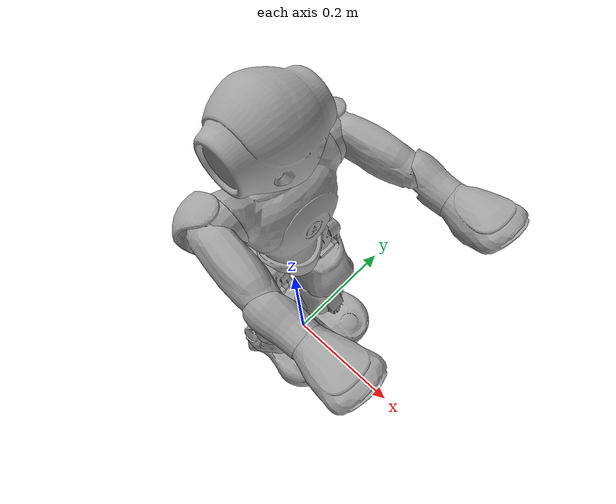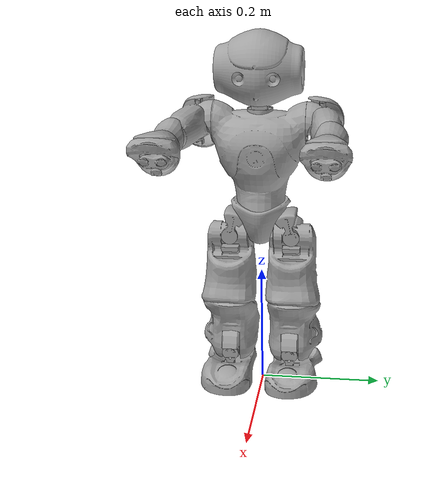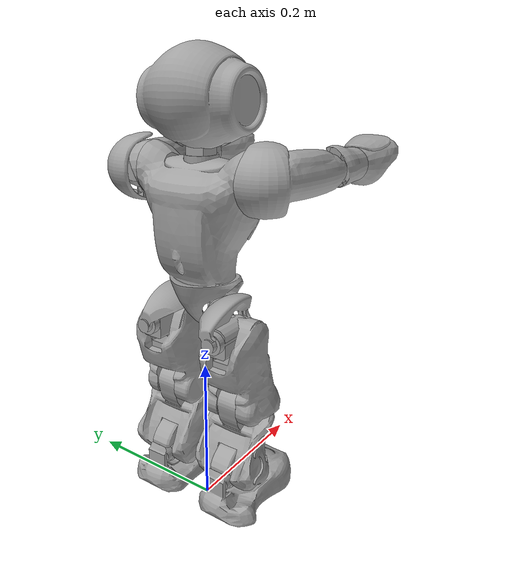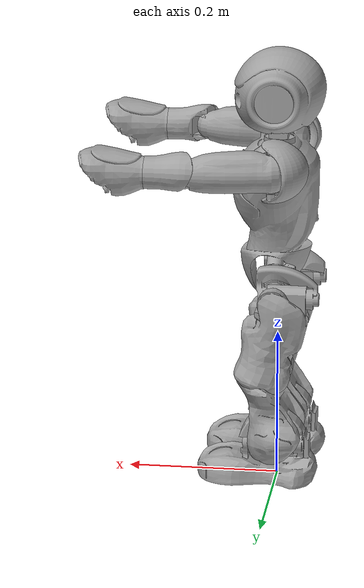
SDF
<sdf version="1.4">

  <!-- Do not modify this. -->
  <model name="">

    <!-- Do not modify this -->
    <pose></pose>

    <!-- A robot-->
    <include>
      <uri>model://nao_meshes</uri>
    </include>

    <!-- Joint used to lock the model to the world when needed -->
    <joint name="world_joint" type="revolute">
      <parent>world</parent>
      <child>Nao::base_link</child>
      <axis>
        <xyz>0 0 1</xyz>
        <limit>
          <upper>0</upper>
          <lower>0</lower>
        </limit>
      </axis>
    </joint>

    <plugin name="agent_plugin" filename="librobocup_agent_plugin.so">

      <!-- Do not modify this -->
      <robot_namespace></robot_namespace>
      <team_name></team_name>
      <uniform_number></uniform_number>

      <view_angle>120</view_angle>
      <head_link>Nao::HeadPitchLink</head_link>
      <imu_sensor>Nao::base_link::imu_sensor</imu_sensor>
      <force_sensor>Nao::RAnkleRollLink::right_foot_contact</force_sensor>
      <force_sensor>Nao::LAnkleRollLink::left_foot_contact</force_sensor>
    </plugin>

  </model>
</sdf>

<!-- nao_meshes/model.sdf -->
<sdf version='1.5'>
  <model name='Nao'>

    <pose>0 0 0.35 0 0 0</pose>
    <link name='base_link'>
      <pose>0 0 0 0 -0 0</pose>
      <inertial>
        <pose>-0.00413 0 0.04342 0 -0 0</pose>
        <mass>1.04956</mass>
        <inertia>
          <ixx>0.00506234</ixx>
          <ixy>1.43116e-05</ixy>
          <ixz>0.000155191</ixz>
          <iyy>0.00488014</iyy>
          <iyz>-2.70793e-05</iyz>
          <izz>0.0016103</izz>
        </inertia>
      </inertial>
      <sensor name='imu_sensor' type='imu'>
        <always_on>true</always_on>
        <update_rate>1000</update_rate>
        <imu>
          <noise>
            <type>gaussian</type>
            <rate>
              <mean>0</mean>
              <stddev>0.0002</stddev>
              <bias_mean>7.5e-06</bias_mean>
              <bias_stddev>8e-07</bias_stddev>
            </rate>
            <accel>
              <mean>0</mean>
              <stddev>0.017</stddev>
              <bias_mean>0.1</bias_mean>
              <bias_stddev>0.001</bias_stddev>
            </accel>
          </noise>
        </imu>
      </sensor>

      <collision name='base_link_collision_torso'>
        <pose>0 0 0 0 -0 0</pose>
        <geometry>
          <mesh>
            <scale>0.001 0.001 0.001</scale>
            <uri>model://nao_meshes/meshes/V40/collision/Torso.dae</uri>
          </mesh>
        </geometry>
      </collision>
      <visual name='base_link_visual_torso'>
        <pose>0 0 0 -1.57 -0 0</pose>
        <geometry>
          <mesh>
            <scale>0.001 0.001 0.001</scale>
            <uri>model://nao_meshes/meshes/V40/visual/Torso.dae</uri>
          </mesh>
        </geometry>
      </visual>
      <velocity_decay>
        <linear>0</linear>
        <angular>0</angular>
      </velocity_decay>
    </link>
    <link name='HeadYawLink'>
      <pose>0 0 0.1265 0 -0 0</pose>
      <inertial>
        <pose>-1e-05 0 -0.02742 0 -0 0</pose>
        <mass>0.06442</mass>
        <inertia>
          <ixx>7.4993e-05</ixx>
          <ixy>1.57e-09</ixy>
          <ixz>-1.834e-08</ixz>
          <iyy>7.6e-05</iyy>
          <iyz>-5.295e-08</iyz>
          <izz>5.53373e-06</izz>
        </inertia>
      </inertial>
      <collision name='HeadYawLink_collision'>
        <pose>0 0 0 0 -0 0</pose>
        <geometry>
          <mesh>
            <scale>0.001 0.001 0.001</scale>
            <uri>model://nao_meshes/meshes/V40/collision/HeadYaw.dae</uri>
          </mesh>
        </geometry>
      </collision>
      <visual name='HeadYawLink_visual'>
        <pose>0 0 0 -1.57 -0 0</pose>
        <geometry>
          <mesh>
            <scale>0.001 0.001 0.001</scale>
            <uri>model://nao_meshes/meshes/V40/visual/HeadYaw.dae</uri>
          </mesh>
        </geometry>
      </visual>
      <velocity_decay>
        <linear>0</linear>
        <angular>0</angular>
      </velocity_decay>
    </link>
    <joint name='HeadYaw' type='revolute'>
      <child>HeadYawLink</child>
      <parent>base_link</parent>
      <axis>
        <xyz>0 0 1</xyz>
        <limit>
          <lower>-1e+16</lower>
          <upper>1e+16</upper>
        </limit>
        <dynamics>
          <damping>0.01</damping>
        </dynamics>
        <use_parent_model_frame>1</use_parent_model_frame>
      </axis>
      <physics><ode><implicit_spring_damper>true</implicit_spring_damper></ode></physics>
    </joint>
    <link name='HeadPitchLink'>
      <pose>0 0 0.1265 0 -0 0</pose>
      <inertial>
        <pose>-0.00112 0 0.05258 0 -0 0</pose>
        <mass>0.60533</mass>
        <inertia>
          <ixx>0.0026313</ixx>
          <ixy>8.78814e-06</ixy>
          <ixz>4.09847e-05</ixz>
          <iyy>0.00249112</iyy>
          <iyz>-2.99579e-05</iyz>
          <izz>0.000985736</izz>
        </inertia>
      </inertial>
      <collision name='HeadPitchLink_collision'>
        <pose>0 0 0 0 -0 0</pose>
        <geometry>
          <mesh>
            <scale>0.001 0.001 0.001</scale>
            <uri>model://nao_meshes/meshes/V40/collision/HeadPitch.dae</uri>
          </mesh>
        </geometry>
      </collision>
      <visual name='HeadPitchLink_visual'>
        <pose>0 0 0 -1.57 -0 0</pose>
        <geometry>
          <mesh>
            <scale>0.001 0.001 0.001</scale>
            <uri>model://nao_meshes/meshes/V40/visual/HeadPitch.dae</uri>
          </mesh>
        </geometry>
      </visual>
      <velocity_decay>
        <linear>0</linear>
        <angular>0</angular>
      </velocity_decay>
    </link>
    <joint name='HeadPitch' type='revolute'>
      <child>HeadPitchLink</child>
      <parent>HeadYawLink</parent>
      <axis>
        <xyz>0 1 0</xyz>
        <limit>
          <lower>-1e+16</lower>
          <upper>1e+16</upper>
        </limit>
        <dynamics>
          <damping>0.01</damping>
        </dynamics>
        <use_parent_model_frame>1</use_parent_model_frame>
      </axis>
      <physics><ode><implicit_spring_damper>true</implicit_spring_damper></ode></physics>
    </joint>
    <link name='LHipYawPitchLink'>
      <pose>0 0.05 -0.085 0 -0 0</pose>
      <inertial>
        <pose>-0.00781 -0.01114 0.02661 0 -0 0</pose>
        <mass>0.06981</mass>
        <inertia>
          <ixx>8.15023e-05</ixx>
          <ixy>-4.99449e-06</ixy>
          <ixz>1.27482e-05</ixz>
          <iyy>0.000101326</iyy>
          <iyz>2.34547e-05</iyz>
          <izz>6.26236e-05</izz>
        </inertia>
      </inertial>
      <collision name='LHipYawPitchLink_collision'>
        <pose>0 0 0 0 -0 0</pose>
        <geometry>
          <mesh>
            <scale>0.001 0.001 0.001</scale>
            <uri>model://nao_meshes/meshes/V40/collision/LHipYawPitch.dae</uri>
          </mesh>
        </geometry>
      </collision>
      <visual name='LHipYawPitchLink_visual'>
        <pose>0 0 0 -1.57 -0 0</pose>
        <geometry>
          <mesh>
            <scale>0.001 0.001 0.001</scale>
            <uri>model://nao_meshes/meshes/V40/visual/LHipYawPitch.dae</uri>
          </mesh>
        </geometry>
      </visual>
      <velocity_decay>
        <linear>0</linear>
        <angular>0</angular>
      </velocity_decay>
    </link>
    <joint name='LHipYawPitch' type='revolute'>
      <child>LHipYawPitchLink</child>
      <parent>base_link</parent>
      <axis>
        <xyz>0 0.707107 -0.707107</xyz>
        <limit>
          <lower>-1e+16</lower>
          <upper>1e+16</upper>
        </limit>
        <dynamics>
          <damping>0.01</damping>
        </dynamics>
        <use_parent_model_frame>1</use_parent_model_frame>
      </axis>
      <physics><ode><implicit_spring_damper>true</implicit_spring_damper></ode></physics>
    </joint>
    <link name='LHipRollLink'>
      <pose>0 0.05 -0.085 0 -0 0</pose>
      <inertial>
        <pose>-0.01549 0.00029 -0.00515 0 -0 0</pose>
        <mass>0.13053</mass>
        <inertia>
          <ixx>2.75835e-05</ixx>
          <ixy>-2.233e-08</ixy>
          <ixz>-4.08164e-06</ixz>
          <iyy>9.82706e-05</iyy>
          <iyz>-4.19e-09</iyz>
          <izz>8.80997e-05</izz>
        </inertia>
      </inertial>
      <collision name='LHipRollLink_collision'>
        <pose>0 0 0 0 -0 0</pose>
        <geometry>
          <mesh>
            <scale>0.001 0.001 0.001</scale>
            <uri>model://nao_meshes/meshes/V40/collision/LHipRoll.dae</uri>
          </mesh>
        </geometry>
      </collision>
      <visual name='LHipRollLink_visual'>
        <pose>0 0 0 -1.57 -0 0</pose>
        <geometry>
          <mesh>
            <scale>0.001 0.001 0.001</scale>
            <uri>model://nao_meshes/meshes/V40/visual/LHipRoll.dae</uri>
          </mesh>
        </geometry>
      </visual>
      <velocity_decay>
        <linear>0</linear>
        <angular>0</angular>
      </velocity_decay>
    </link>
    <joint name='LHipRoll' type='revolute'>
      <child>LHipRollLink</child>
      <parent>LHipYawPitchLink</parent>
      <axis>
        <xyz>1 0 0</xyz>
        <limit>
          <lower>-1e+16</lower>
          <upper>1e+16</upper>
        </limit>
        <dynamics>
          <damping>0.01</damping>
        </dynamics>
        <use_parent_model_frame>1</use_parent_model_frame>
      </axis>
      <physics><ode><implicit_spring_damper>true</implicit_spring_damper></ode></physics>
    </joint>
    <link name='LHipPitchLink'>
      <pose>0 0.05 -0.085 0 -0 0</pose>
      <inertial>
        <pose>0.00138 0.00221 -0.05373 0 -0 0</pose>
        <mass>0.38968</mass>
        <inertia>
          <ixx>0.00163672</ixx>
          <ixy>9.2451e-07</ixy>
          <ixz>8.53067e-05</ixz>
          <iyy>0.00159107</iyy>
          <iyz>3.83616e-05</iyz>
          <izz>0.000303743</izz>
        </inertia>
      </inertial>
      <collision name='LHipPitchLink_collision'>
        <pose>0 0 0 0 -0 0</pose>
        <geometry>
          <mesh>
            <scale>0.001 0.001 0.001</scale>
            <uri>model://nao_meshes/meshes/V40/collision/LHipPitch.dae</uri>
          </mesh>
        </geometry>
      </collision>
      <visual name='LHipPitchLink_visual'>
        <pose>0 0 0 -1.57 -0 0</pose>
        <geometry>
          <mesh>
            <scale>0.001 0.001 0.001</scale>
            <uri>model://nao_meshes/meshes/V40/visual/LHipPitch.dae</uri>
          </mesh>
        </geometry>
      </visual>
      <velocity_decay>
        <linear>0</linear>
        <angular>0</angular>
      </velocity_decay>
    </link>
    <joint name='LHipPitch' type='revolute'>
      <child>LHipPitchLink</child>
      <parent>LHipRollLink</parent>
      <axis>
        <xyz>0 1 0</xyz>
        <limit>
          <lower>-1e+16</lower>
          <upper>1e+16</upper>
        </limit>
        <dynamics>
          <damping>0.01</damping>
        </dynamics>
        <use_parent_model_frame>1</use_parent_model_frame>
      </axis>
      <physics><ode><implicit_spring_damper>true</implicit_spring_damper></ode></physics>
    </joint>
    <link name='LKneePitchLink'>
      <pose>0 0.05 -0.185 0 -0 0</pose>
      <inertial>
        <pose>0.00453 0.00225 -0.04936 0 -0 0</pose>
        <mass>0.29142</mass>
        <inertia>
          <ixx>0.00118208</ixx>
          <ixy>6.3362e-07</ixy>
          <ixz>3.6497e-05</ixz>
          <iyy>0.00112865</iyy>
          <iyz>3.94952e-05</iyz>
          <izz>0.000193227</izz>
        </inertia>
      </inertial>
      <collision name='LKneePitchLink_collision'>
        <pose>0 0 0 0 -0 0</pose>
        <geometry>
          <mesh>
            <scale>0.001 0.001 0.001</scale>
            <uri>model://nao_meshes/meshes/V40/collision/LKneePitch.dae</uri>
          </mesh>
        </geometry>
      </collision>
      <visual name='LKneePitchLink_visual'>
        <pose>0 0 0 -1.57 -0 0</pose>
        <geometry>
          <mesh>
            <scale>0.001 0.001 0.001</scale>
            <uri>model://nao_meshes/meshes/V40/visual/LKneePitch.dae</uri>
          </mesh>
        </geometry>
      </visual>
      <velocity_decay>
        <linear>0</linear>
        <angular>0</angular>
      </velocity_decay>
    </link>
    <joint name='LKneePitch' type='revolute'>
      <child>LKneePitchLink</child>
      <parent>LHipPitchLink</parent>
      <axis>
        <xyz>0 1 0</xyz>
        <limit>
          <lower>-1e+16</lower>
          <upper>1e+16</upper>
        </limit>
        <dynamics>
          <damping>0.01</damping>
        </dynamics>
        <use_parent_model_frame>1</use_parent_model_frame>
      </axis>
      <physics><ode><implicit_spring_damper>true</implicit_spring_damper></ode></physics>
    </joint>
    <link name='LAnklePitchLink'>
      <pose>0 0.05 -0.2879 0 -0 0</pose>
      <inertial>
        <pose>0.00045 0.00029 0.00685 0 -0 0</pose>
        <mass>0.13416</mass>
        <inertia>
          <ixx>3.85098e-05</ixx>
          <ixy>-2.634e-08</ixy>
          <ixz>3.86194e-06</ixz>
          <iyy>7.42653e-05</iyy>
          <iyz>1.834e-08</iyz>
          <izz>5.48654e-05</izz>
        </inertia>
      </inertial>
      <collision name='LAnklePitchLink_collision'>
        <pose>0 0 0 0 -0 0</pose>
        <geometry>
          <mesh>
            <scale>0.001 0.001 0.001</scale>
            <uri>model://nao_meshes/meshes/V40/collision/LAnklePitch.dae</uri>
          </mesh>
        </geometry>
      </collision>
      <visual name='LAnklePitchLink_visual'>
        <pose>0 0 0 -1.57 -0 0</pose>
        <geometry>
          <mesh>
            <scale>0.001 0.001 0.001</scale>
            <uri>model://nao_meshes/meshes/V40/visual/LAnklePitch.dae</uri>
          </mesh>
        </geometry>
      </visual>
      <velocity_decay>
        <linear>0</linear>
        <angular>0</angular>
      </velocity_decay>
    </link>
    <joint name='LAnklePitch' type='revolute'>
      <child>LAnklePitchLink</child>
      <parent>LKneePitchLink</parent>
      <axis>
        <xyz>0 1 0</xyz>
        <limit>
          <lower>-1e+16</lower>
          <upper>1e+16</upper>
        </limit>
        <dynamics>
          <damping>1.0</damping>
        </dynamics>
        <use_parent_model_frame>1</use_parent_model_frame>
      </axis>
      <physics><ode><implicit_spring_damper>true</implicit_spring_damper></ode></physics>
    </joint>
    <link name='LAnkleRollLink'>
      <pose>0 0.05 -0.2879 0 -0 0</pose>
      <inertial>
        <pose>0.02542 0.0033 -0.03239 0 -0 0</pose>
        <mass>0.16184</mass>
        <inertia>
          <ixx>0.000269442</ixx>
          <ixy>-5.69572e-06</ixy>
          <ixz>0.000139379</ixz>
          <iyy>0.000644343</iyy>
          <iyz>1.87409e-05</iyz>
          <izz>0.000525757</izz>
        </inertia>
      </inertial>
      <collision name='LAnkleRollLink_collision'>
        <pose>0 0 0 0 -0 0</pose>
        <geometry>
          <mesh>
            <scale>0.001 0.001 0.001</scale>
            <uri>model://nao_meshes/meshes/V40/collision/LAnkleRoll.dae</uri>
          </mesh>
        </geometry>
      </collision>
      <visual name='LAnkleRollLink_visual'>
        <pose>0 0 0 -1.57 -0 0</pose>
        <geometry>
          <mesh>
            <scale>0.001 0.001 0.001</scale>
            <uri>model://nao_meshes/meshes/V40/visual/LAnkleRoll.dae</uri>
          </mesh>
        </geometry>
      </visual>
      <velocity_decay>
        <linear>0</linear>
        <angular>0</angular>
      </velocity_decay>
      <sensor name='left_foot_contact' type='contact'>
        <always_on>true</always_on>
        <update_rate>1000</update_rate>
        <contact>
          <collision>LAnkleRollLink_collision</collision>
        </contact>
      </sensor>
    </link>
    <joint name='LAnkleRoll' type='revolute'>
      <child>LAnkleRollLink</child>
      <parent>LAnklePitchLink</parent>
      <axis>
        <xyz>1 0 0</xyz>
        <limit>
          <lower>-1e+16</lower>
          <upper>1e+16</upper>
        </limit>
        <dynamics>
          <damping>1.0</damping>
        </dynamics>
        <use_parent_model_frame>1</use_parent_model_frame>
      </axis>
      <physics><ode><implicit_spring_damper>true</implicit_spring_damper></ode></physics>
    </joint>
    <link name='LShoulderPitchLink'>
      <pose>0 0.098 0.1 0 -0 0</pose>
      <inertial>
        <pose>-0.00165 -0.02663 0.00014 0 -0 0</pose>
        <mass>0.07504</mass>
        <inertia>
          <ixx>8.42843e-05</ixx>
          <ixy>-2.02802e-06</ixy>
          <ixz>2.338e-08</ixz>
          <iyy>1.41556e-05</iyy>
          <iyz>-1.972e-08</iyz>
          <izz>8.64195e-05</izz>
        </inertia>
      </inertial>
      <collision name='LShoulderPitchLink_collision'>
        <pose>0 0 0 0 -0 0</pose>
        <geometry>
          <mesh>
            <scale>0.001 0.001 0.001</scale>
            <uri>model://nao_meshes/meshes/V40/collision/LShoulderPitch.dae</uri>
          </mesh>
        </geometry>
      </collision>
      <visual name='LShoulderPitchLink_visual'>
        <pose>0 0 0 -1.57 -0 0</pose>
        <geometry>
          <mesh>
            <scale>0.001 0.001 0.001</scale>
            <uri>model://nao_meshes/meshes/V40/visual/LShoulderPitch.dae</uri>
          </mesh>
        </geometry>
      </visual>
      <velocity_decay>
        <linear>0</linear>
        <angular>0</angular>
      </velocity_decay>
    </link>
    <joint name='LShoulderPitch' type='revolute'>
      <child>LShoulderPitchLink</child>
      <parent>base_link</parent>
      <axis>
        <xyz>0 1 0</xyz>
        <limit>
          <lower>-1e+16</lower>
          <upper>1e+16</upper>
        </limit>
        <dynamics>
          <damping>0.01</damping>
        </dynamics>
        <use_parent_model_frame>1</use_parent_model_frame>
      </axis>
      <physics><ode><implicit_spring_damper>true</implicit_spring_damper></ode></physics>
    </joint>
    <link name='LShoulderRollLink'>
      <pose>0 0.098 0.1 0 -0 0</pose>
      <inertial>
        <pose>0.02455 0.00563 0.0033 0 -0 0</pose>
        <mass>0.15777</mass>
        <inertia>
          <ixx>9.38999e-05</ixx>
          <ixy>-4.71445e-05</ixy>
          <ixz>-2.69947e-05</ixz>
          <iyy>0.000371519</iyy>
          <iyz>-2.45977e-06</iyz>
          <izz>0.000341901</izz>
        </inertia>
      </inertial>
      <collision name='LShoulderRollLink_collision'>
        <pose>0 0 0 0 -0 0</pose>
        <geometry>
          <mesh>
            <scale>0.001 0.001 0.001</scale>
            <uri>model://nao_meshes/meshes/V40/collision/LShoulderRoll.dae</uri>
          </mesh>
        </geometry>
      </collision>
      <visual name='LShoulderRollLink_visual'>
        <pose>0 0 0 -1.57 -0 0</pose>
        <geometry>
          <mesh>
            <scale>0.001 0.001 0.001</scale>
            <uri>model://nao_meshes/meshes/V40/visual/LShoulderRoll.dae</uri>
          </mesh>
        </geometry>
      </visual>
      <velocity_decay>
        <linear>0</linear>
        <angular>0</angular>
      </velocity_decay>
    </link>
    <joint name='LShoulderRoll' type='revolute'>
      <child>LShoulderRollLink</child>
      <parent>LShoulderPitchLink</parent>
      <axis>
        <xyz>0 0 1</xyz>
        <limit>
          <lower>-1e+16</lower>
          <upper>1e+16</upper>
        </limit>
        <dynamics>
          <damping>0.01</damping>
        </dynamics>
        <use_parent_model_frame>1</use_parent_model_frame>
      </axis>
      <physics><ode><implicit_spring_damper>true</implicit_spring_damper></ode></physics>
    </joint>
    <link name='LElbowYawLink'>
      <pose>0.105 0.113 0.1 0 -0 0</pose>
      <inertial>
        <pose>-0.02744 0 -0.00014 0 -0 0</pose>
        <mass>0.06483</mass>
        <inertia>
          <ixx>5.59715e-06</ixx>
          <ixy>4.21e-09</ixy>
          <ixz>4.319e-08</ixz>
          <iyy>7.54331e-05</iyy>
          <iyz>-1.84e-09</iyz>
          <izz>7.64434e-05</izz>
        </inertia>
      </inertial>
      <velocity_decay>
        <linear>0</linear>
        <angular>0</angular>
      </velocity_decay>
    </link>
    <joint name='LElbowYaw' type='revolute'>
      <child>LElbowYawLink</child>
      <parent>LShoulderRollLink</parent>
      <axis>
        <xyz>1 0 0</xyz>
        <limit>
          <lower>-1e+16</lower>
          <upper>1e+16</upper>
        </limit>
        <dynamics>
          <damping>0.01</damping>
        </dynamics>
        <use_parent_model_frame>1</use_parent_model_frame>
      </axis>
      <physics><ode><implicit_spring_damper>true</implicit_spring_damper></ode></physics>
    </joint>
    <link name='LElbowRollLink'>
      <pose>0.105 0.113 0.1 0 -0 0</pose>
      <inertial>
        <pose>0.02556 0.00281 0.00076 0 -0 0</pose>
        <mass>0.07761</mass>
        <inertia>
          <ixx>2.53322e-05</ixx>
          <ixy>-2.34271e-06</ixy>
          <ixz>7.459e-08</ixz>
          <iyy>8.91322e-05</iyy>
          <iyz>-2.655e-08</iyz>
          <izz>8.72873e-05</izz>
        </inertia>
      </inertial>
      <collision name='LElbowRollLink_collision'>
        <pose>0 0 0 0 -0 0</pose>
        <geometry>
          <mesh>
            <scale>0.001 0.001 0.001</scale>
            <uri>model://nao_meshes/meshes/V40/collision/LElbowRoll.dae</uri>
          </mesh>
        </geometry>
      </collision>
      <visual name='LElbowRollLink_visual'>
        <pose>0 0 0 -1.57 -0 0</pose>
        <geometry>
          <mesh>
            <scale>0.001 0.001 0.001</scale>
            <uri>model://nao_meshes/meshes/V40/visual/LElbowRoll.dae</uri>
          </mesh>
        </geometry>
      </visual>
      <velocity_decay>
        <linear>0</linear>
        <angular>0</angular>
      </velocity_decay>
    </link>
    <joint name='LElbowRoll' type='revolute'>
      <child>LElbowRollLink</child>
      <parent>LElbowYawLink</parent>
      <axis>
        <xyz>0 0 1</xyz>
        <limit>
          <lower>-1e+16</lower>
          <upper>1e+16</upper>
        </limit>
        <dynamics>
          <damping>0.01</damping>
        </dynamics>
        <use_parent_model_frame>1</use_parent_model_frame>
      </axis>
      <physics><ode><implicit_spring_damper>true</implicit_spring_damper></ode></physics>
    </joint>
    <link name='LWristYawLink'>
      <pose>0.16095 0.113 0.1 0 -0 0</pose>
      <inertial>
        <pose>0.03434 -0.00088 0.00308 0 -0 0</pose>
        <mass>0.18533</mass>
        <inertia>
          <ixx>7.05493e-05</ixx>
          <ixy>5.71599e-06</ixy>
          <ixz>-2.24744e-05</ixz>
          <iyy>0.000356062</iyy>
          <iyz>3.17771e-06</iyz>
          <izz>0.000351919</izz>
        </inertia>
      </inertial>
      <collision name='LWristYawLink_collision'>
        <pose>0 0 0 0 -0 0</pose>
        <geometry>
          <mesh>
            <scale>0.001 0.001 0.001</scale>
            <uri>model://nao_meshes/meshes/V40/collision/WristYaw.dae</uri>
          </mesh>
        </geometry>
      </collision>
      <visual name='LWristYawLink_visual'>
        <pose>0 0 0 -1.57 -0 0</pose>
        <geometry>
          <mesh>
            <scale>0.001 0.001 0.001</scale>
            <uri>model://nao_meshes/meshes/V40/visual/WristYaw.dae</uri>
          </mesh>
        </geometry>
      </visual>
      <velocity_decay>
        <linear>0</linear>
        <angular>0</angular>
      </velocity_decay>
    </link>
    <joint name='LWristYaw' type='revolute'>
      <child>LWristYawLink</child>
      <parent>LElbowRollLink</parent>
      <axis>
        <xyz>1 0 0</xyz>
        <limit>
          <lower>-1e+16</lower>
          <upper>1e+16</upper>
        </limit>
        <dynamics>
          <damping>0.01</damping>
        </dynamics>
        <use_parent_model_frame>1</use_parent_model_frame>
      </axis>
      <physics><ode><implicit_spring_damper>true</implicit_spring_damper></ode></physics>
    </joint>
    <link name='RHipYawPitchLink'>
      <pose>0 -0.05 -0.085 0 -0 0</pose>
      <inertial>
        <pose>-0.00781 0.01114 0.02661 0 -0 0</pose>
        <mass>0.06981</mass>
        <inertia>
          <ixx>8.9972e-05</ixx>
          <ixy>5.00219e-06</ixy>
          <ixz>1.27352e-05</ixz>
          <iyy>0.000105526</iyy>
          <iyz>-2.77008e-05</iyz>
          <izz>6.68872e-05</izz>
        </inertia>
      </inertial>
      <collision name='RHipYawPitchLink_collision'>
        <pose>0 0 0 0 -0 0</pose>
        <geometry>
          <mesh>
            <scale>0.001 0.001 0.001</scale>
            <uri>model://nao_meshes/meshes/V40/collision/RHipYawPitch.dae</uri>
          </mesh>
        </geometry>
      </collision>
      <visual name='RHipYawPitchLink_visual'>
        <pose>0 0 0 -1.57 -0 0</pose>
        <geometry>
          <mesh>
            <scale>0.001 0.001 0.001</scale>
            <uri>model://nao_meshes/meshes/V40/visual/RHipYawPitch.dae</uri>
          </mesh>
        </geometry>
      </visual>
      <velocity_decay>
        <linear>0</linear>
        <angular>0</angular>
      </velocity_decay>
    </link>
    <joint name='RHipYawPitch' type='revolute'>
      <child>RHipYawPitchLink</child>
      <parent>base_link</parent>
      <axis>
        <xyz>0 0.707107 0.707107</xyz>
        <limit>
          <lower>-1e+16</lower>
          <upper>1e+16</upper>
        </limit>
        <dynamics>
          <damping>0.01</damping>
        </dynamics>
        <use_parent_model_frame>1</use_parent_model_frame>
      </axis>
      <physics><ode><implicit_spring_damper>true</implicit_spring_damper></ode></physics>
    </joint>
    <link name='RHipRollLink'>
      <pose>0 -0.05 -0.085 0 -0 0</pose>
      <inertial>
        <pose>-0.01549 -0.00029 -0.00515 0 -0 0</pose>
        <mass>0.13053</mass>
        <inertia>
          <ixx>2.75865e-05</ixx>
          <ixy>-1.919e-08</ixy>
          <ixz>-4.10822e-06</ixz>
          <iyy>9.827e-05</iyy>
          <iyz>2.51e-09</iyz>
          <izz>8.81033e-05</izz>
        </inertia>
      </inertial>
      <collision name='RHipRollLink_collision'>
        <pose>0 0 0 0 -0 0</pose>
        <geometry>
          <mesh>
            <scale>0.001 0.001 0.001</scale>
            <uri>model://nao_meshes/meshes/V40/collision/RHipRoll.dae</uri>
          </mesh>
        </geometry>
      </collision>
      <visual name='RHipRollLink_visual'>
        <pose>0 0 0 -1.57 -0 0</pose>
        <geometry>
          <mesh>
            <scale>0.001 0.001 0.001</scale>
            <uri>model://nao_meshes/meshes/V40/visual/RHipRoll.dae</uri>
          </mesh>
        </geometry>
      </visual>
      <velocity_decay>
        <linear>0</linear>
        <angular>0</angular>
      </velocity_decay>
    </link>
    <joint name='RHipRoll' type='revolute'>
      <child>RHipRollLink</child>
      <parent>RHipYawPitchLink</parent>
      <axis>
        <xyz>1 0 0</xyz>
        <limit>
          <lower>-1e+16</lower>
          <upper>1e+16</upper>
        </limit>
        <dynamics>
          <damping>0.01</damping>
        </dynamics>
        <use_parent_model_frame>1</use_parent_model_frame>
      </axis>
      <physics><ode><implicit_spring_damper>true</implicit_spring_damper></ode></physics>
    </joint>
    <link name='RHipPitchLink'>
      <pose>0 -0.05 -0.085 0 -0 0</pose>
      <inertial>
        <pose>0.00138 -0.00221 -0.05373 0 -0 0</pose>
        <mass>0.38968</mass>
        <inertia>
          <ixx>0.00163748</ixx>
          <ixy>-8.3954e-07</ixy>
          <ixz>8.5883e-05</ixz>
          <iyy>0.00159221</iyy>
          <iyz>-3.91763e-05</iyz>
          <izz>0.000303978</izz>
        </inertia>
      </inertial>
      <collision name='RHipPitchLink_collision'>
        <pose>0 0 0 0 -0 0</pose>
        <geometry>
          <mesh>
            <scale>0.001 0.001 0.001</scale>
            <uri>model://nao_meshes/meshes/V40/collision/RHipPitch.dae</uri>
          </mesh>
        </geometry>
      </collision>
      <visual name='RHipPitchLink_visual'>
        <pose>0 0 0 -1.57 -0 0</pose>
        <geometry>
          <mesh>
            <scale>0.001 0.001 0.001</scale>
            <uri>model://nao_meshes/meshes/V40/visual/RHipPitch.dae</uri>
          </mesh>
        </geometry>
      </visual>
      <velocity_decay>
        <linear>0</linear>
        <angular>0</angular>
      </velocity_decay>
    </link>
    <joint name='RHipPitch' type='revolute'>
      <child>RHipPitchLink</child>
      <parent>RHipRollLink</parent>
      <axis>
        <xyz>0 1 0</xyz>
        <limit>
          <lower>-1e+16</lower>
          <upper>1e+16</upper>
        </limit>
        <dynamics>
          <damping>0.01</damping>
        </dynamics>
        <use_parent_model_frame>1</use_parent_model_frame>
      </axis>
      <physics><ode><implicit_spring_damper>true</implicit_spring_damper></ode></physics>
    </joint>
    <link name='RKneePitchLink'>
      <pose>0 -0.05 -0.185 0 -0 0</pose>
      <inertial>
        <pose>0.00453 -0.00225 -0.04936 0 -0 0</pose>
        <mass>0.29142</mass>
        <inertia>
          <ixx>0.00118283</ixx>
          <ixy>-8.965e-07</ixy>
          <ixz>2.79969e-05</ixz>
          <iyy>0.00112828</iyy>
          <iyz>-3.8476e-05</iyz>
          <izz>0.000191453</izz>
        </inertia>
      </inertial>
      <collision name='RKneePitchLink_collision'>
        <pose>0 0 0 0 -0 0</pose>
        <geometry>
          <mesh>
            <scale>0.001 0.001 0.001</scale>
            <uri>model://nao_meshes/meshes/V40/collision/RKneePitch.dae</uri>
          </mesh>
        </geometry>
      </collision>
      <visual name='RKneePitchLink_visual'>
        <pose>0 0 0 -1.57 -0 0</pose>
        <geometry>
          <mesh>
            <scale>0.001 0.001 0.001</scale>
            <uri>model://nao_meshes/meshes/V40/visual/RKneePitch.dae</uri>
          </mesh>
        </geometry>
      </visual>
      <velocity_decay>
        <linear>0</linear>
        <angular>0</angular>
      </velocity_decay>
    </link>
    <joint name='RKneePitch' type='revolute'>
      <child>RKneePitchLink</child>
      <parent>RHipPitchLink</parent>
      <axis>
        <xyz>0 1 0</xyz>
        <limit>
          <lower>-1e+16</lower>
          <upper>1e+16</upper>
        </limit>
        <dynamics>
          <damping>0.01</damping>
        </dynamics>
        <use_parent_model_frame>1</use_parent_model_frame>
      </axis>
      <physics><ode><implicit_spring_damper>true</implicit_spring_damper></ode></physics>
    </joint>
    <link name='RAnklePitchLink'>
      <pose>0 -0.05 -0.2879 0 -0 0</pose>
      <inertial>
        <pose>0.00045 -0.00029 0.00685 0 -0 0</pose>
        <mass>0.13416</mass>
        <inertia>
          <ixx>3.85081e-05</ixx>
          <ixy>6.434e-08</ixy>
          <ixz>3.87466e-06</ixz>
          <iyy>7.43108e-05</iyy>
          <iyz>-4.58e-09</iyz>
          <izz>5.49131e-05</izz>
        </inertia>
      </inertial>
      <collision name='RAnklePitchLink_collision'>
        <pose>0 0 0 0 -0 0</pose>
        <geometry>
          <mesh>
            <scale>0.001 0.001 0.001</scale>
            <uri>model://nao_meshes/meshes/V40/collision/RAnklePitch.dae</uri>
          </mesh>
        </geometry>
      </collision>
      <visual name='RAnklePitchLink_visual'>
        <pose>0 0 0 -1.57 -0 0</pose>
        <geometry>
          <mesh>
            <scale>0.001 0.001 0.001</scale>
            <uri>model://nao_meshes/meshes/V40/visual/RAnklePitch.dae</uri>
          </mesh>
        </geometry>
      </visual>
      <velocity_decay>
        <linear>0</linear>
        <angular>0</angular>
      </velocity_decay>
    </link>
    <joint name='RAnklePitch' type='revolute'>
      <child>RAnklePitchLink</child>
      <parent>RKneePitchLink</parent>
      <axis>
        <xyz>0 1 0</xyz>
        <limit>
          <lower>-1e+16</lower>
          <upper>1e+16</upper>
        </limit>
        <dynamics>
          <damping>1.0</damping>
        </dynamics>
        <use_parent_model_frame>1</use_parent_model_frame>
      </axis>
      <physics><ode><implicit_spring_damper>true</implicit_spring_damper></ode></physics>
    </joint>
    <link name='RAnkleRollLink'>
      <pose>0 -0.05 -0.2879 0 -0 0</pose>
      <inertial>
        <pose>0.02542 -0.0033 -0.03239 0 -0 0</pose>
        <mass>0.16184</mass>
        <inertia>
          <ixx>0.000269302</ixx>
          <ixy>5.87505e-06</ixy>
          <ixz>0.000139133</ixz>
          <iyy>0.000643474</iyy>
          <iyz>-1.88492e-05</iyz>
          <izz>0.000525035</izz>
        </inertia>
      </inertial>
      <collision name='RAnkleRollLink_collision'>
        <pose>0 0 0 0 -0 0</pose>
        <geometry>
          <mesh>
            <scale>0.001 0.001 0.001</scale>
            <uri>model://nao_meshes/meshes/V40/collision/RAnkleRoll.dae</uri>
          </mesh>
        </geometry>
      </collision>
      <visual name='RAnkleRollLink_visual'>
        <pose>0 0 0 -1.57 -0 0</pose>
        <geometry>
          <mesh>
            <scale>0.001 0.001 0.001</scale>
            <uri>model://nao_meshes/meshes/V40/visual/RAnkleRoll.dae</uri>
          </mesh>
        </geometry>
      </visual>
      <velocity_decay>
        <linear>0</linear>
        <angular>0</angular>
      </velocity_decay>
      <sensor name='right_foot_contact' type='contact'>
        <always_on>true</always_on>
        <update_rate>1000</update_rate>
        <contact>
          <collision>RAnkleRollLink_collision</collision>
        </contact>
      </sensor>
    </link>
    <joint name='RAnkleRoll' type='revolute'>
      <child>RAnkleRollLink</child>
      <parent>RAnklePitchLink</parent>
      <axis>
        <xyz>1 0 0</xyz>
        <limit>
          <lower>-1e+16</lower>
          <upper>1e+16</upper>
        </limit>
        <dynamics>
          <damping>1.0</damping>
        </dynamics>
        <use_parent_model_frame>1</use_parent_model_frame>
      </axis>
      <physics><ode><implicit_spring_damper>true</implicit_spring_damper></ode></physics>
    </joint>
    <link name='RShoulderPitchLink'>
      <pose>0 -0.098 0.1 0 -0 0</pose>
      <inertial>
        <pose>-0.00165 0.02663 0.00014 0 -0 0</pose>
        <mass>0.07504</mass>
        <inertia>
          <ixx>8.42843e-05</ixx>
          <ixy>2.02802e-06</ixy>
          <ixz>2.338e-08</ixz>
          <iyy>1.41556e-05</iyy>
          <iyz>1.972e-08</iyz>
          <izz>8.64195e-05</izz>
        </inertia>
      </inertial>
      <collision name='RShoulderPitchLink_collision'>
        <pose>0 0 0 0 -0 0</pose>
        <geometry>
          <mesh>
            <scale>0.001 0.001 0.001</scale>
            <uri>model://nao_meshes/meshes/V40/collision/RShoulderPitch.dae</uri>
          </mesh>
        </geometry>
      </collision>
      <visual name='RShoulderPitchLink_visual'>
        <pose>0 0 0 -1.57 -0 0</pose>
        <geometry>
          <mesh>
            <scale>0.001 0.001 0.001</scale>
            <uri>model://nao_meshes/meshes/V40/visual/RShoulderPitch.dae</uri>
          </mesh>
        </geometry>
      </visual>
      <velocity_decay>
        <linear>0</linear>
        <angular>0</angular>
      </velocity_decay>
    </link>
    <joint name='RShoulderPitch' type='revolute'>
      <child>RShoulderPitchLink</child>
      <parent>base_link</parent>
      <axis>
        <xyz>0 1 0</xyz>
        <limit>
          <lower>-1e+16</lower>
          <upper>1e+16</upper>
        </limit>
        <dynamics>
          <damping>0.01</damping>
        </dynamics>
        <use_parent_model_frame>1</use_parent_model_frame>
      </axis>
      <physics><ode><implicit_spring_damper>true</implicit_spring_damper></ode></physics>
    </joint>
    <link name='RShoulderRollLink'>
      <pose>0 -0.098 0.1 0 -0 0</pose>
      <inertial>
        <pose>0.02455 -0.00563 0.0033 0 -0 0</pose>
        <mass>0.15777</mass>
        <inertia>
          <ixx>0.00011012</ixx>
          <ixy>7.66913e-05</ixy>
          <ixz>-2.60461e-05</ixz>
          <iyy>0.000367577</iyy>
          <iyz>1.20983e-05</iyz>
          <izz>0.000354618</izz>
        </inertia>
      </inertial>
      <collision name='RShoulderRollLink_collision'>
        <pose>0 0 0 0 -0 0</pose>
        <geometry>
          <mesh>
            <scale>0.001 0.001 0.001</scale>
            <uri>model://nao_meshes/meshes/V40/collision/RShoulderRoll.dae</uri>
          </mesh>
        </geometry>
      </collision>
      <visual name='RShoulderRollLink_visual'>
        <pose>0 0 0 -1.57 -0 0</pose>
        <geometry>
          <mesh>
            <scale>0.001 0.001 0.001</scale>
            <uri>model://nao_meshes/meshes/V40/visual/RShoulderRoll.dae</uri>
          </mesh>
        </geometry>
      </visual>
      <velocity_decay>
        <linear>0</linear>
        <angular>0</angular>
      </velocity_decay>
    </link>
    <joint name='RShoulderRoll' type='revolute'>
      <child>RShoulderRollLink</child>
      <parent>RShoulderPitchLink</parent>
      <axis>
        <xyz>0 0 1</xyz>
        <limit>
          <lower>-1e+16</lower>
          <upper>1e+16</upper>
        </limit>
        <dynamics>
          <damping>0.01</damping>
        </dynamics>
        <use_parent_model_frame>1</use_parent_model_frame>
      </axis>
      <physics><ode><implicit_spring_damper>true</implicit_spring_damper></ode></physics>
    </joint>
    <link name='RElbowYawLink'>
      <pose>0.105 -0.113 0.1 0 -0 0</pose>
      <inertial>
        <pose>-0.02744 0 -0.00014 0 -0 0</pose>
        <mass>0.06483</mass>
        <inertia>
          <ixx>5.59715e-06</ixx>
          <ixy>4.21e-09</ixy>
          <ixz>4.319e-08</ixz>
          <iyy>7.54331e-05</iyy>
          <iyz>-1.84e-09</iyz>
          <izz>7.64434e-05</izz>
        </inertia>
      </inertial>
      <velocity_decay>
        <linear>0</linear>
        <angular>0</angular>
      </velocity_decay>
    </link>
    <joint name='RElbowYaw' type='revolute'>
      <child>RElbowYawLink</child>
      <parent>RShoulderRollLink</parent>
      <axis>
        <xyz>1 0 0</xyz>
        <limit>
          <lower>-1e+16</lower>
          <upper>1e+16</upper>
        </limit>
        <dynamics>
          <damping>0.01</damping>
        </dynamics>
        <use_parent_model_frame>1</use_parent_model_frame>
      </axis>
      <physics><ode><implicit_spring_damper>true</implicit_spring_damper></ode></physics>
    </joint>
    <link name='RElbowRollLink'>
      <pose>0.105 -0.113 0.1 0 -0 0</pose>
      <inertial>
        <pose>0.02556 -0.00281 0.00076 0 -0 0</pose>
        <mass>0.07761</mass>
        <inertia>
          <ixx>2.53907e-05</ixx>
          <ixy>2.33243e-06</ixy>
          <ixz>-6.0117e-07</ixz>
          <iyy>8.92204e-05</iyy>
          <iyz>2.694e-08</iyz>
          <izz>8.72484e-05</izz>
        </inertia>
      </inertial>
      <collision name='RElbowRollLink_collision'>
        <pose>0 0 0 0 -0 0</pose>
        <geometry>
          <mesh>
            <scale>0.001 0.001 0.001</scale>
            <uri>model://nao_meshes/meshes/V40/collision/RElbowRoll.dae</uri>
          </mesh>
        </geometry>
      </collision>
      <visual name='RElbowRollLink_visual'>
        <pose>0 0 0 -1.57 -0 0</pose>
        <geometry>
          <mesh>
            <scale>0.001 0.001 0.001</scale>
            <uri>model://nao_meshes/meshes/V40/visual/RElbowRoll.dae</uri>
          </mesh>
        </geometry>
      </visual>
      <velocity_decay>
        <linear>0</linear>
        <angular>0</angular>
      </velocity_decay>
    </link>
    <joint name='RElbowRoll' type='revolute'>
      <child>RElbowRollLink</child>
      <parent>RElbowYawLink</parent>
      <axis>
        <xyz>0 0 1</xyz>
        <limit>
          <lower>-1e+16</lower>
          <upper>1e+16</upper>
        </limit>
        <dynamics>
          <damping>0.01</damping>
        </dynamics>
        <use_parent_model_frame>1</use_parent_model_frame>
      </axis>
      <physics><ode><implicit_spring_damper>true</implicit_spring_damper></ode></physics>
    </joint>
    <link name='RWristYawLink'>
      <pose>0.16095 -0.113 0.1 0 -0 0</pose>
      <inertial>
        <pose>0.03434 0.00088 0.00308 0 -0 0</pose>
        <mass>0.18533</mass>
        <inertia>
          <ixx>7.05493e-05</ixx>
          <ixy>5.71599e-06</ixy>
          <ixz>-2.24744e-05</ixz>
          <iyy>0.000356062</iyy>
          <iyz>3.17771e-06</iyz>
          <izz>0.000351919</izz>
        </inertia>
      </inertial>
      <collision name='RWristYawLink_collision'>
        <pose>0 0 0 0 -0 0</pose>
        <geometry>
          <mesh>
            <scale>0.001 0.001 0.001</scale>
            <uri>model://nao_meshes/meshes/V40/collision/WristYaw.dae</uri>
          </mesh>
        </geometry>
      </collision>
      <visual name='RWristYawLink_visual'>
        <pose>0 0 0 -1.57 -0 0</pose>
        <geometry>
          <mesh>
            <scale>0.001 0.001 0.001</scale>
            <uri>model://nao_meshes/meshes/V40/visual/WristYaw.dae</uri>
          </mesh>
        </geometry>
      </visual>
      <velocity_decay>
        <linear>0</linear>
        <angular>0</angular>
      </velocity_decay>
    </link>
    <joint name='RWristYaw' type='revolute'>
      <child>RWristYawLink</child>
      <parent>RElbowRollLink</parent>
      <axis>
        <xyz>1 0 0</xyz>
        <limit>
          <lower>-1e+16</lower>
          <upper>1e+16</upper>
        </limit>
        <dynamics>
          <damping>0.01</damping>
        </dynamics>
        <use_parent_model_frame>1</use_parent_model_frame>
      </axis>
      <physics><ode><implicit_spring_damper>true</implicit_spring_damper></ode></physics>
    </joint>

  </model>
</sdf>
